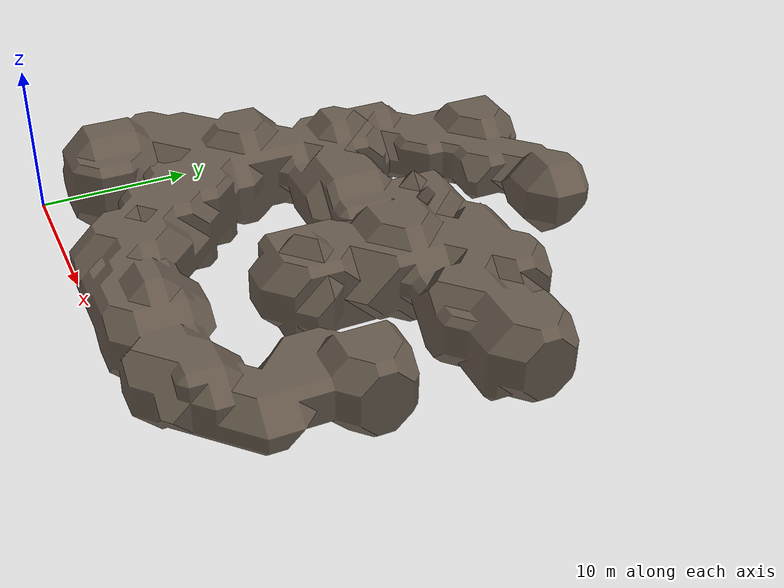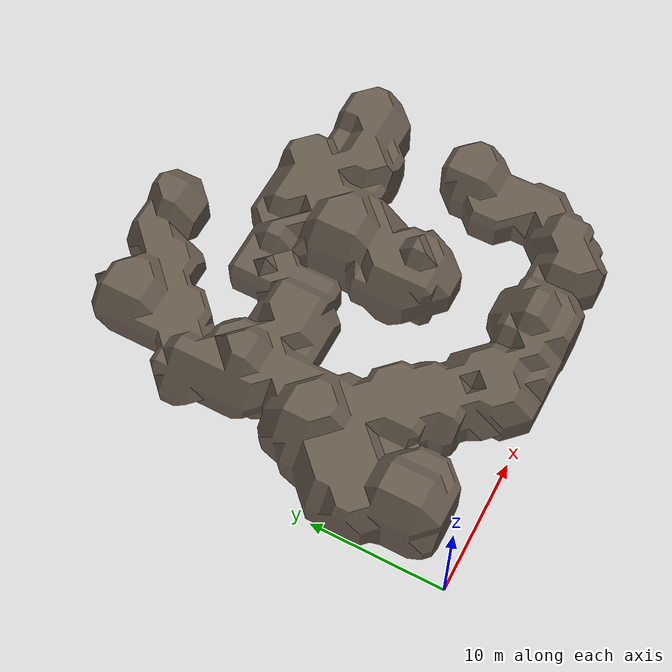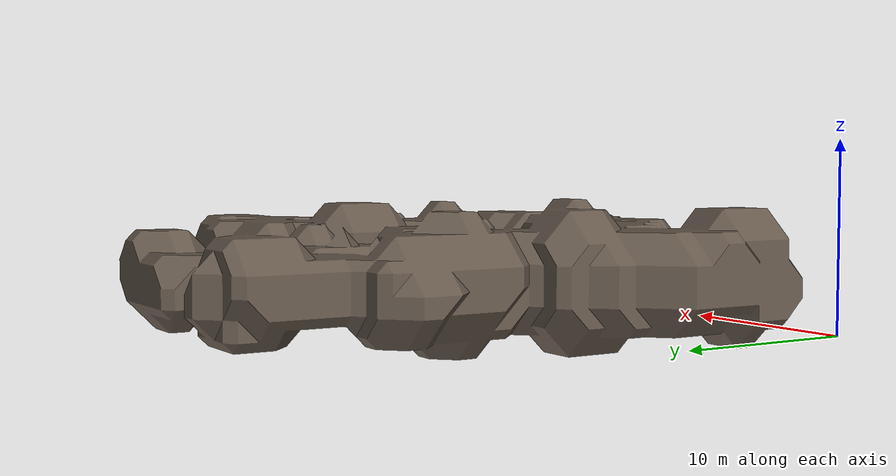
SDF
<?xml version="1.0"?>
<sdf version="1.9">
  <model name="cave_model_001">
    <static>true</static>
    <link name="cave_link">

      <!-- Visual geometry (high-poly OBJ) -->
      <visual name="cave_visual">
        <geometry>
          <mesh>
            <uri>model://cave_model_001/meshes/cave_visual.obj</uri>
            <scale>1 1 1</scale>
          </mesh>
        </geometry>
        <material>
          <ambient>0.2 0.2 0.2 1</ambient>
          <diffuse>0.4 0.35 0.3 1</diffuse>
          <specular>0.05 0.05 0.05 1</specular>
          <double_sided>true</double_sided>
        </material>
      </visual>

      <!-- Collision geometry (decimated OBJ) -->
      <collision name="cave_collision">
        <geometry>
          <mesh>
            <uri>model://cave_model_001/meshes/cave_collision.obj</uri>
            <scale>1 1 1</scale>
          </mesh>
        </geometry>
        <surface>
          <friction>
            <ode>
              <mu>0.8</mu>
              <mu2>0.8</mu2>
            </ode>
          </friction>
          <contact>
            <ode>
              <kp>1e6</kp>
              <kd>1e2</kd>
            </ode>
          </contact>
        </surface>
      </collision>

    </link>
  </model>
</sdf>
